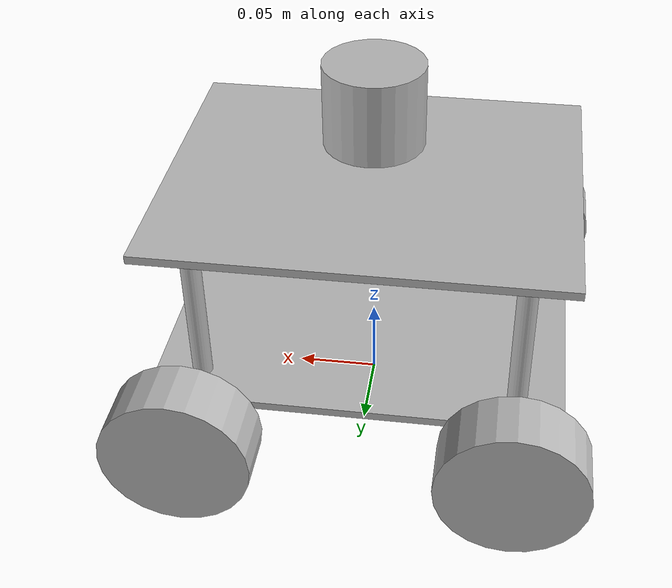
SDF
<?xml version="1.0" ?>
<sdf version="1.9">
  <model name="flexirover">
    <static>true</static>
    <pose>0 0 0 0 0 0</pose>

    <link name="base_link">

      <!-- Lower plate -->
      <visual name="lower_plate_visual">
        <pose>0 0 0.05 0 0 0</pose>
        <geometry>
          <box>
            <size>0.246 0.200 0.005</size>
          </box>
        </geometry>
      </visual>

      <collision name="lower_plate_collision">
        <pose>0 0 0.05 0 0 0</pose>
        <geometry>
          <box>
            <size>0.246 0.200 0.005</size>
          </box>
        </geometry>
      </collision>

      <!-- Upper plate -->
      <visual name="upper_plate_visual">
        <pose>0 0 0.15 0 0 0</pose>
        <geometry>
          <box>
            <size>0.246 0.200 0.005</size>
          </box>
        </geometry>
      </visual>

      <collision name="upper_plate_collision">
        <pose>0 0 0.15 0 0 0</pose>
        <geometry>
          <box>
            <size>0.246 0.200 0.005</size>
          </box>
        </geometry>
      </collision>

      <!-- Four simple standoffs -->
      <visual name="front_left_post_visual">
        <pose>0.095 0.075 0.10 0 0 0</pose>
        <geometry>
          <cylinder>
            <radius>0.006</radius>
            <length>0.10</length>
          </cylinder>
        </geometry>
      </visual>

      <visual name="front_right_post_visual">
        <pose>0.095 -0.075 0.10 0 0 0</pose>
        <geometry>
          <cylinder>
            <radius>0.006</radius>
            <length>0.10</length>
          </cylinder>
        </geometry>
      </visual>

      <visual name="rear_left_post_visual">
        <pose>-0.095 0.075 0.10 0 0 0</pose>
        <geometry>
          <cylinder>
            <radius>0.006</radius>
            <length>0.10</length>
          </cylinder>
        </geometry>
      </visual>

      <visual name="rear_right_post_visual">
        <pose>-0.095 -0.075 0.10 0 0 0</pose>
        <geometry>
          <cylinder>
            <radius>0.006</radius>
            <length>0.10</length>
          </cylinder>
        </geometry>
      </visual>

      <!-- LiDAR body -->
      <visual name="lidar_body_visual">
        <pose>0 0 0.20 0 0 0</pose>
        <geometry>
          <cylinder>
            <radius>0.030</radius>
            <length>0.050</length>
          </cylinder>
        </geometry>
      </visual>

      <collision name="lidar_body_collision">
        <pose>0 0 0.20 0 0 0</pose>
        <geometry>
          <cylinder>
            <radius>0.030</radius>
            <length>0.050</length>
          </cylinder>
        </geometry>
      </collision>

      <!-- Gazebo Sim LiDAR -->
      <sensor name="lidar" type="gpu_lidar">
        <pose>0 0 0.20 0 0 0</pose>
        <topic>/flexirover/scan</topic>
        <update_rate>10</update_rate>
        <always_on>true</always_on>
        <visualize>true</visualize>

        <ray>
          <scan>
            <horizontal>
              <samples>720</samples>
              <resolution>1</resolution>
              <min_angle>-3.14159</min_angle>
              <max_angle>3.14159</max_angle>
            </horizontal>
          </scan>
          <range>
            <min>0.12</min>
            <max>10.0</max>
            <resolution>0.01</resolution>
          </range>
        </ray>
      </sensor>

      <!-- Wheels as simple visuals/collisions attached to base_link -->
      <visual name="front_left_wheel_visual">
        <pose>0.095 0.130 0.044 1.5708 0 0</pose>
        <geometry>
          <cylinder>
            <radius>0.044</radius>
            <length>0.035</length>
          </cylinder>
        </geometry>
      </visual>

      <collision name="front_left_wheel_collision">
        <pose>0.095 0.130 0.044 1.5708 0 0</pose>
        <geometry>
          <cylinder>
            <radius>0.044</radius>
            <length>0.035</length>
          </cylinder>
        </geometry>
      </collision>

      <visual name="front_right_wheel_visual">
        <pose>0.095 -0.130 0.044 1.5708 0 0</pose>
        <geometry>
          <cylinder>
            <radius>0.044</radius>
            <length>0.035</length>
          </cylinder>
        </geometry>
      </visual>

      <collision name="front_right_wheel_collision">
        <pose>0.095 -0.130 0.044 1.5708 0 0</pose>
        <geometry>
          <cylinder>
            <radius>0.044</radius>
            <length>0.035</length>
          </cylinder>
        </geometry>
      </collision>

      <visual name="rear_left_wheel_visual">
        <pose>-0.095 0.130 0.044 1.5708 0 0</pose>
        <geometry>
          <cylinder>
            <radius>0.044</radius>
            <length>0.035</length>
          </cylinder>
        </geometry>
      </visual>

      <collision name="rear_left_wheel_collision">
        <pose>-0.095 0.130 0.044 1.5708 0 0</pose>
        <geometry>
          <cylinder>
            <radius>0.044</radius>
            <length>0.035</length>
          </cylinder>
        </geometry>
      </collision>

      <visual name="rear_right_wheel_visual">
        <pose>-0.095 -0.130 0.044 1.5708 0 0</pose>
        <geometry>
          <cylinder>
            <radius>0.044</radius>
            <length>0.035</length>
          </cylinder>
        </geometry>
      </visual>

      <collision name="rear_right_wheel_collision">
        <pose>-0.095 -0.130 0.044 1.5708 0 0</pose>
        <geometry>
          <cylinder>
            <radius>0.044</radius>
            <length>0.035</length>
          </cylinder>
        </geometry>
      </collision>

    </link>
  </model>
</sdf>
